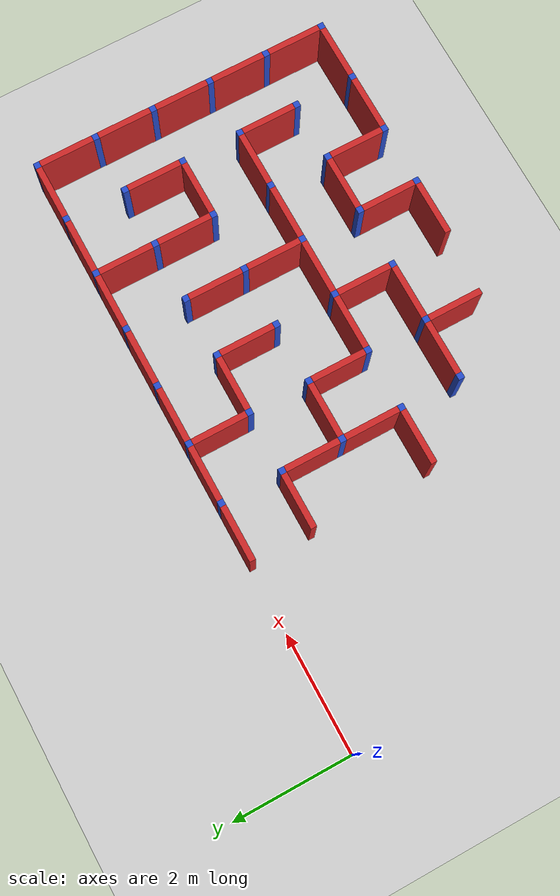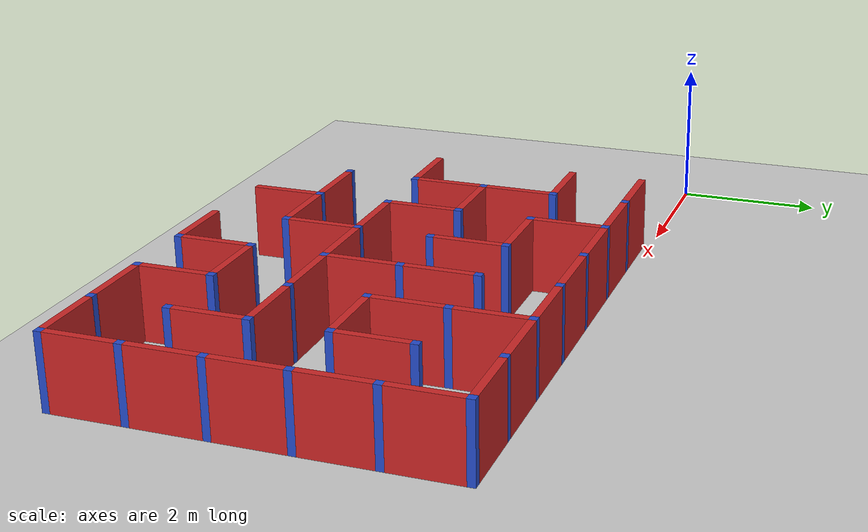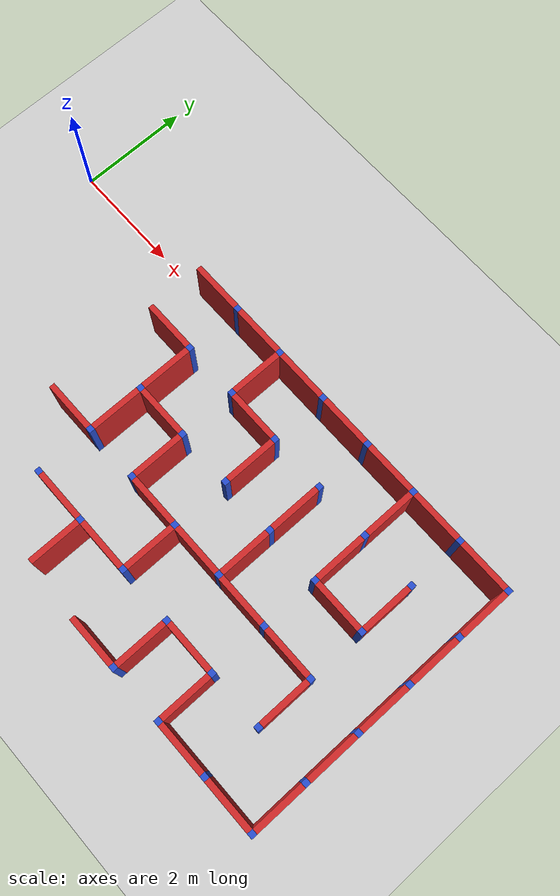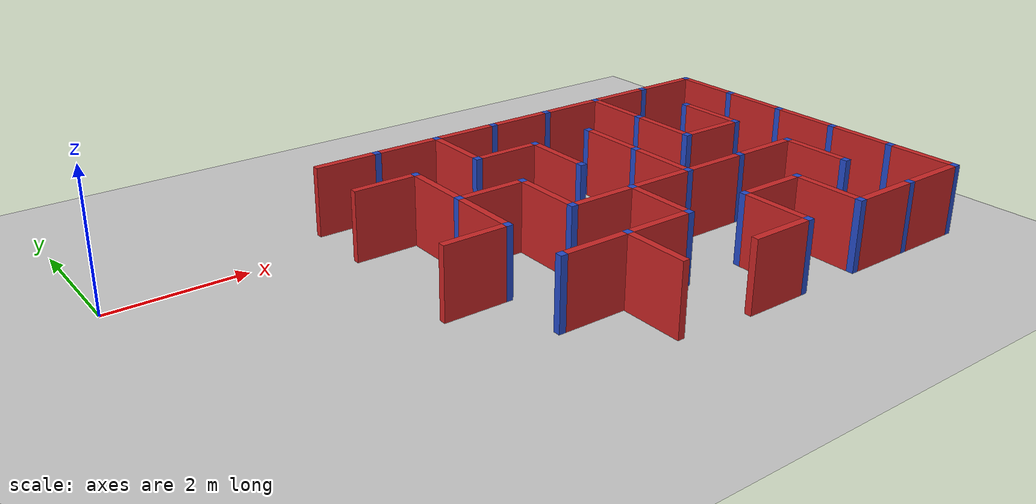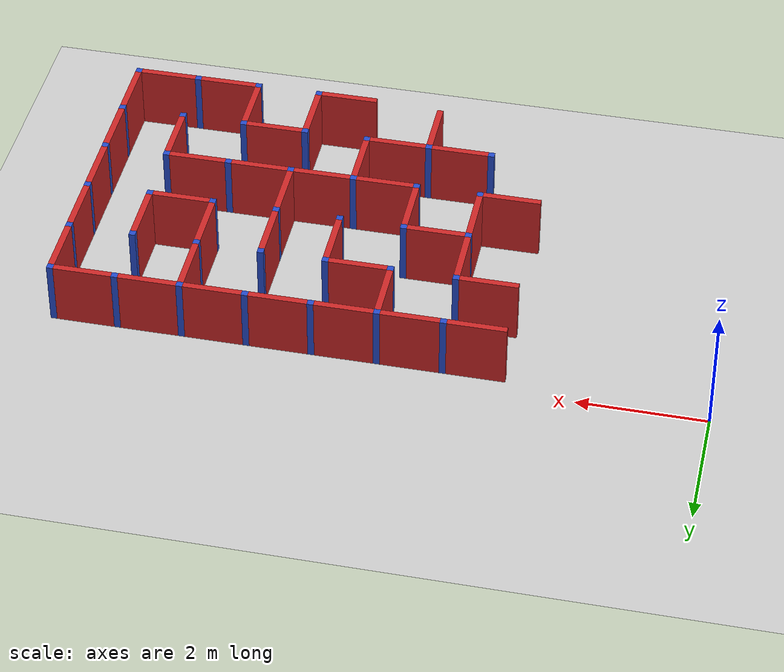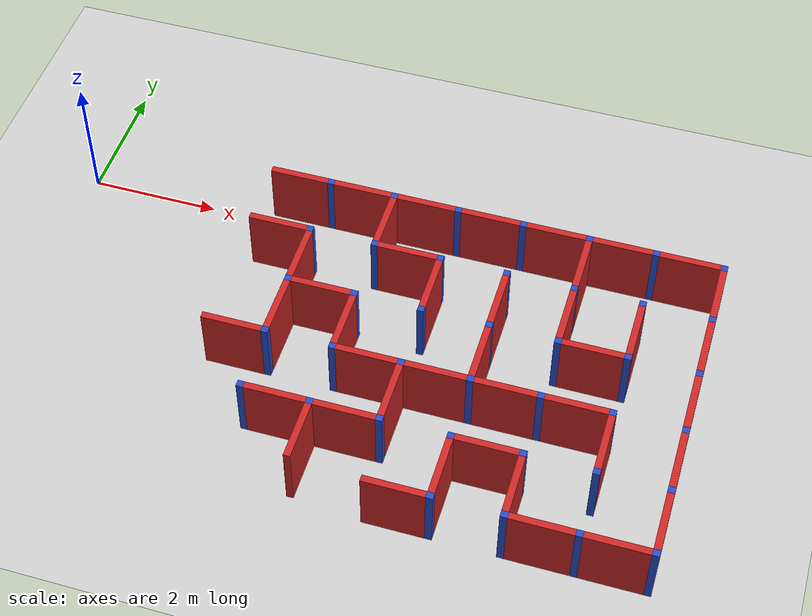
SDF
<sdf version="1.4">
 <world name="maze_world">
  <model name="ground">
   <static>true</static>
   <link name="ground_link">
    <collision name="collision1"><geometry><plane><normal>0 0 1</normal></plane></geometry></collision>
    <visual name="visual1"><geometry><plane><normal>0 0 1</normal><size>100 100</size></plane></geometry></visual>
   </link>
  </model>
  <model name="Untitled">
   <link name="Wall_3_0_h">
    <collision name="Wall_0_Collision">
     <geometry><box><size>0.9 0.1 1</size></box></geometry>
     <pose>0 0 0.75 0 -0 0</pose>
    </collision>
    <visual name="Wall_0_Visual">
     <pose>0 0 0.75 0 -0 0</pose>
     <geometry><box><size>0.9 0.1 1</size></box></geometry>
     <material>
      <script><uri>file://media/materials/scripts/gazebo.material</uri><name>Gazebo/Red</name></script>
      <ambient>0.921569 0.807843 0.615686 1</ambient>
     </material>
     <meta><layer>0</layer></meta>
    </visual>
    <pose>3.5 0 0 0 -0 0</pose>
   </link>
   <link name="Wall_4_0_h">
    <collision name="Wall_0_Collision">
     <geometry><box><size>0.9 0.1 1</size></box></geometry>
     <pose>0 0 0.75 0 -0 0</pose>
    </collision>
    <visual name="Wall_0_Visual">
     <pose>0 0 0.75 0 -0 0</pose>
     <geometry><box><size>0.9 0.1 1</size></box></geometry>
     <material>
      <script><uri>file://media/materials/scripts/gazebo.material</uri><name>Gazebo/Red</name></script>
      <ambient>0.921569 0.807843 0.615686 1</ambient>
     </material>
     <meta><layer>0</layer></meta>
    </visual>
    <pose>4.5 0 0 0 -0 0</pose>
   </link>
   <link name="Joint_4_0">
    <collision name="Wall_2_Collision">
     <geometry><box><size>0.1 0.1 1</size></box></geometry>
     <pose>0 0 0.75 0 -0 0</pose>
    </collision>
    <visual name="Wall_2_Visual">
     <pose>0 0 0.75 0 -0 0</pose>
     <geometry><box><size>0.1 0.1 1</size></box></geometry>
     <material>
      <script><uri>file://media/materials/scripts/gazebo.material</uri><name>Gazebo/Blue</name></script>
      <ambient>0.996078 0.47451 0.0196078 1</ambient>
     </material>
     <meta><layer>0</layer></meta>
    </visual>
    <pose>4 0 0 0 -0 0</pose>
   </link>
   <link name="Wall_5_0_h">
    <collision name="Wall_0_Collision">
     <geometry><box><size>0.9 0.1 1</size></box></geometry>
     <pose>0 0 0.75 0 -0 0</pose>
    </collision>
    <visual name="Wall_0_Visual">
     <pose>0 0 0.75 0 -0 0</pose>
     <geometry><box><size>0.9 0.1 1</size></box></geometry>
     <material>
      <script><uri>file://media/materials/scripts/gazebo.material</uri><name>Gazebo/Red</name></script>
      <ambient>0.921569 0.807843 0.615686 1</ambient>
     </material>
     <meta><layer>0</layer></meta>
    </visual>
    <pose>5.5 0 0 0 -0 0</pose>
   </link>
   <link name="Wall_5_0_v">
    <collision name="Wall_0_Collision">
     <geometry><box><size>0.9 0.1 1</size></box></geometry>
     <pose>0 0 0.75 0 -0 0</pose>
    </collision>
    <visual name="Wall_0_Visual">
     <pose>0 0 0.75 0 -0 0</pose>
     <geometry><box><size>0.9 0.1 1</size></box></geometry>
     <material>
      <script><uri>file://media/materials/scripts/gazebo.material</uri><name>Gazebo/Red</name></script>
      <ambient>0.921569 0.807843 0.615686 1</ambient>
     </material>
     <meta><layer>0</layer></meta>
    </visual>
    <pose>5 -0.5 0 0 -0 1.5708</pose>
   </link>
   <link name="Joint_5_0">
    <collision name="Wall_2_Collision">
     <geometry><box><size>0.1 0.1 1</size></box></geometry>
     <pose>0 0 0.75 0 -0 0</pose>
    </collision>
    <visual name="Wall_2_Visual">
     <pose>0 0 0.75 0 -0 0</pose>
     <geometry><box><size>0.1 0.1 1</size></box></geometry>
     <material>
      <script><uri>file://media/materials/scripts/gazebo.material</uri><name>Gazebo/Blue</name></script>
      <ambient>0.996078 0.47451 0.0196078 1</ambient>
     </material>
     <meta><layer>0</layer></meta>
    </visual>
    <pose>5 0 0 0 -0 0</pose>
   </link>
   <link name="Wall_6_0_h">
    <collision name="Wall_0_Collision">
     <geometry><box><size>0.9 0.1 1</size></box></geometry>
     <pose>0 0 0.75 0 -0 0</pose>
    </collision>
    <visual name="Wall_0_Visual">
     <pose>0 0 0.75 0 -0 0</pose>
     <geometry><box><size>0.9 0.1 1</size></box></geometry>
     <material>
      <script><uri>file://media/materials/scripts/gazebo.material</uri><name>Gazebo/Red</name></script>
      <ambient>0.921569 0.807843 0.615686 1</ambient>
     </material>
     <meta><layer>0</layer></meta>
    </visual>
    <pose>6.5 0 0 0 -0 0</pose>
   </link>
   <link name="Joint_6_0">
    <collision name="Wall_2_Collision">
     <geometry><box><size>0.1 0.1 1</size></box></geometry>
     <pose>0 0 0.75 0 -0 0</pose>
    </collision>
    <visual name="Wall_2_Visual">
     <pose>0 0 0.75 0 -0 0</pose>
     <geometry><box><size>0.1 0.1 1</size></box></geometry>
     <material>
      <script><uri>file://media/materials/scripts/gazebo.material</uri><name>Gazebo/Blue</name></script>
      <ambient>0.996078 0.47451 0.0196078 1</ambient>
     </material>
     <meta><layer>0</layer></meta>
    </visual>
    <pose>6 0 0 0 -0 0</pose>
   </link>
   <link name="Wall_7_0_h">
    <collision name="Wall_0_Collision">
     <geometry><box><size>0.9 0.1 1</size></box></geometry>
     <pose>0 0 0.75 0 -0 0</pose>
    </collision>
    <visual name="Wall_0_Visual">
     <pose>0 0 0.75 0 -0 0</pose>
     <geometry><box><size>0.9 0.1 1</size></box></geometry>
     <material>
      <script><uri>file://media/materials/scripts/gazebo.material</uri><name>Gazebo/Red</name></script>
      <ambient>0.921569 0.807843 0.615686 1</ambient>
     </material>
     <meta><layer>0</layer></meta>
    </visual>
    <pose>7.5 0 0 0 -0 0</pose>
   </link>
   <link name="Joint_7_0">
    <collision name="Wall_2_Collision">
     <geometry><box><size>0.1 0.1 1</size></box></geometry>
     <pose>0 0 0.75 0 -0 0</pose>
    </collision>
    <visual name="Wall_2_Visual">
     <pose>0 0 0.75 0 -0 0</pose>
     <geometry><box><size>0.1 0.1 1</size></box></geometry>
     <material>
      <script><uri>file://media/materials/scripts/gazebo.material</uri><name>Gazebo/Blue</name></script>
      <ambient>0.996078 0.47451 0.0196078 1</ambient>
     </material>
     <meta><layer>0</layer></meta>
    </visual>
    <pose>7 0 0 0 -0 0</pose>
   </link>
   <link name="Wall_8_0_h">
    <collision name="Wall_0_Collision">
     <geometry><box><size>0.9 0.1 1</size></box></geometry>
     <pose>0 0 0.75 0 -0 0</pose>
    </collision>
    <visual name="Wall_0_Visual">
     <pose>0 0 0.75 0 -0 0</pose>
     <geometry><box><size>0.9 0.1 1</size></box></geometry>
     <material>
      <script><uri>file://media/materials/scripts/gazebo.material</uri><name>Gazebo/Red</name></script>
      <ambient>0.921569 0.807843 0.615686 1</ambient>
     </material>
     <meta><layer>0</layer></meta>
    </visual>
    <pose>8.5 0 0 0 -0 0</pose>
   </link>
   <link name="Wall_8_0_v">
    <collision name="Wall_0_Collision">
     <geometry><box><size>0.9 0.1 1</size></box></geometry>
     <pose>0 0 0.75 0 -0 0</pose>
    </collision>
    <visual name="Wall_0_Visual">
     <pose>0 0 0.75 0 -0 0</pose>
     <geometry><box><size>0.9 0.1 1</size></box></geometry>
     <material>
      <script><uri>file://media/materials/scripts/gazebo.material</uri><name>Gazebo/Red</name></script>
      <ambient>0.921569 0.807843 0.615686 1</ambient>
     </material>
     <meta><layer>0</layer></meta>
    </visual>
    <pose>8 -0.5 0 0 -0 1.5708</pose>
   </link>
   <link name="Joint_8_0">
    <collision name="Wall_2_Collision">
     <geometry><box><size>0.1 0.1 1</size></box></geometry>
     <pose>0 0 0.75 0 -0 0</pose>
    </collision>
    <visual name="Wall_2_Visual">
     <pose>0 0 0.75 0 -0 0</pose>
     <geometry><box><size>0.1 0.1 1</size></box></geometry>
     <material>
      <script><uri>file://media/materials/scripts/gazebo.material</uri><name>Gazebo/Blue</name></script>
      <ambient>0.996078 0.47451 0.0196078 1</ambient>
     </material>
     <meta><layer>0</layer></meta>
    </visual>
    <pose>8 0 0 0 -0 0</pose>
   </link>
   <link name="Wall_9_0_h">
    <collision name="Wall_0_Collision">
     <geometry><box><size>0.9 0.1 1</size></box></geometry>
     <pose>0 0 0.75 0 -0 0</pose>
    </collision>
    <visual name="Wall_0_Visual">
     <pose>0 0 0.75 0 -0 0</pose>
     <geometry><box><size>0.9 0.1 1</size></box></geometry>
     <material>
      <script><uri>file://media/materials/scripts/gazebo.material</uri><name>Gazebo/Red</name></script>
      <ambient>0.921569 0.807843 0.615686 1</ambient>
     </material>
     <meta><layer>0</layer></meta>
    </visual>
    <pose>9.5 0 0 0 -0 0</pose>
   </link>
   <link name="Joint_9_0">
    <collision name="Wall_2_Collision">
     <geometry><box><size>0.1 0.1 1</size></box></geometry>
     <pose>0 0 0.75 0 -0 0</pose>
    </collision>
    <visual name="Wall_2_Visual">
     <pose>0 0 0.75 0 -0 0</pose>
     <geometry><box><size>0.1 0.1 1</size></box></geometry>
     <material>
      <script><uri>file://media/materials/scripts/gazebo.material</uri><name>Gazebo/Blue</name></script>
      <ambient>0.996078 0.47451 0.0196078 1</ambient>
     </material>
     <meta><layer>0</layer></meta>
    </visual>
    <pose>9 0 0 0 -0 0</pose>
   </link>
   <link name="Wall_10_0_v">
    <collision name="Wall_0_Collision">
     <geometry><box><size>0.9 0.1 1</size></box></geometry>
     <pose>0 0 0.75 0 -0 0</pose>
    </collision>
    <visual name="Wall_0_Visual">
     <pose>0 0 0.75 0 -0 0</pose>
     <geometry><box><size>0.9 0.1 1</size></box></geometry>
     <material>
      <script><uri>file://media/materials/scripts/gazebo.material</uri><name>Gazebo/Red</name></script>
      <ambient>0.921569 0.807843 0.615686 1</ambient>
     </material>
     <meta><layer>0</layer></meta>
    </visual>
    <pose>10 -0.5 0 0 -0 1.5708</pose>
   </link>
   <link name="Joint_10_0">
    <collision name="Wall_2_Collision">
     <geometry><box><size>0.1 0.1 1</size></box></geometry>
     <pose>0 0 0.75 0 -0 0</pose>
    </collision>
    <visual name="Wall_2_Visual">
     <pose>0 0 0.75 0 -0 0</pose>
     <geometry><box><size>0.1 0.1 1</size></box></geometry>
     <material>
      <script><uri>file://media/materials/scripts/gazebo.material</uri><name>Gazebo/Blue</name></script>
      <ambient>0.996078 0.47451 0.0196078 1</ambient>
     </material>
     <meta><layer>0</layer></meta>
    </visual>
    <pose>10 0 0 0 -0 0</pose>
   </link>
   <link name="Wall_3_1_h">
    <collision name="Wall_0_Collision">
     <geometry><box><size>0.9 0.1 1</size></box></geometry>
     <pose>0 0 0.75 0 -0 0</pose>
    </collision>
    <visual name="Wall_0_Visual">
     <pose>0 0 0.75 0 -0 0</pose>
     <geometry><box><size>0.9 0.1 1</size></box></geometry>
     <material>
      <script><uri>file://media/materials/scripts/gazebo.material</uri><name>Gazebo/Red</name></script>
      <ambient>0.921569 0.807843 0.615686 1</ambient>
     </material>
     <meta><layer>0</layer></meta>
    </visual>
    <pose>3.5 -1 0 0 -0 0</pose>
   </link>
   <link name="Wall_4_1_v">
    <collision name="Wall_0_Collision">
     <geometry><box><size>0.9 0.1 1</size></box></geometry>
     <pose>0 0 0.75 0 -0 0</pose>
    </collision>
    <visual name="Wall_0_Visual">
     <pose>0 0 0.75 0 -0 0</pose>
     <geometry><box><size>0.9 0.1 1</size></box></geometry>
     <material>
      <script><uri>file://media/materials/scripts/gazebo.material</uri><name>Gazebo/Red</name></script>
      <ambient>0.921569 0.807843 0.615686 1</ambient>
     </material>
     <meta><layer>0</layer></meta>
    </visual>
    <pose>4 -1.5 0 0 -0 1.5708</pose>
   </link>
   <link name="Joint_4_-1">
    <collision name="Wall_2_Collision">
     <geometry><box><size>0.1 0.1 1</size></box></geometry>
     <pose>0 0 0.75 0 -0 0</pose>
    </collision>
    <visual name="Wall_2_Visual">
     <pose>0 0 0.75 0 -0 0</pose>
     <geometry><box><size>0.1 0.1 1</size></box></geometry>
     <material>
      <script><uri>file://media/materials/scripts/gazebo.material</uri><name>Gazebo/Blue</name></script>
      <ambient>0.996078 0.47451 0.0196078 1</ambient>
     </material>
     <meta><layer>0</layer></meta>
    </visual>
    <pose>4 -1 0 0 -0 0</pose>
   </link>
   <link name="Wall_5_1_h">
    <collision name="Wall_0_Collision">
     <geometry><box><size>0.9 0.1 1</size></box></geometry>
     <pose>0 0 0.75 0 -0 0</pose>
    </collision>
    <visual name="Wall_0_Visual">
     <pose>0 0 0.75 0 -0 0</pose>
     <geometry><box><size>0.9 0.1 1</size></box></geometry>
     <material>
      <script><uri>file://media/materials/scripts/gazebo.material</uri><name>Gazebo/Red</name></script>
      <ambient>0.921569 0.807843 0.615686 1</ambient>
     </material>
     <meta><layer>0</layer></meta>
    </visual>
    <pose>5.5 -1 0 0 -0 0</pose>
   </link>
   <link name="Joint_5_-1">
    <collision name="Wall_2_Collision">
     <geometry><box><size>0.1 0.1 1</size></box></geometry>
     <pose>0 0 0.75 0 -0 0</pose>
    </collision>
    <visual name="Wall_2_Visual">
     <pose>0 0 0.75 0 -0 0</pose>
     <geometry><box><size>0.1 0.1 1</size></box></geometry>
     <material>
      <script><uri>file://media/materials/scripts/gazebo.material</uri><name>Gazebo/Blue</name></script>
      <ambient>0.996078 0.47451 0.0196078 1</ambient>
     </material>
     <meta><layer>0</layer></meta>
    </visual>
    <pose>5 -1 0 0 -0 0</pose>
   </link>
   <link name="Wall_6_1_v">
    <collision name="Wall_0_Collision">
     <geometry><box><size>0.9 0.1 1</size></box></geometry>
     <pose>0 0 0.75 0 -0 0</pose>
    </collision>
    <visual name="Wall_0_Visual">
     <pose>0 0 0.75 0 -0 0</pose>
     <geometry><box><size>0.9 0.1 1</size></box></geometry>
     <material>
      <script><uri>file://media/materials/scripts/gazebo.material</uri><name>Gazebo/Red</name></script>
      <ambient>0.921569 0.807843 0.615686 1</ambient>
     </material>
     <meta><layer>0</layer></meta>
    </visual>
    <pose>6 -1.5 0 0 -0 1.5708</pose>
   </link>
   <link name="Joint_6_-1">
    <collision name="Wall_2_Collision">
     <geometry><box><size>0.1 0.1 1</size></box></geometry>
     <pose>0 0 0.75 0 -0 0</pose>
    </collision>
    <visual name="Wall_2_Visual">
     <pose>0 0 0.75 0 -0 0</pose>
     <geometry><box><size>0.1 0.1 1</size></box></geometry>
     <material>
      <script><uri>file://media/materials/scripts/gazebo.material</uri><name>Gazebo/Blue</name></script>
      <ambient>0.996078 0.47451 0.0196078 1</ambient>
     </material>
     <meta><layer>0</layer></meta>
    </visual>
    <pose>6 -1 0 0 -0 0</pose>
   </link>
   <link name="Wall_7_1_v">
    <collision name="Wall_0_Collision">
     <geometry><box><size>0.9 0.1 1</size></box></geometry>
     <pose>0 0 0.75 0 -0 0</pose>
    </collision>
    <visual name="Wall_0_Visual">
     <pose>0 0 0.75 0 -0 0</pose>
     <geometry><box><size>0.9 0.1 1</size></box></geometry>
     <material>
      <script><uri>file://media/materials/scripts/gazebo.material</uri><name>Gazebo/Red</name></script>
      <ambient>0.921569 0.807843 0.615686 1</ambient>
     </material>
     <meta><layer>0</layer></meta>
    </visual>
    <pose>7 -1.5 0 0 -0 1.5708</pose>
   </link>
   <link name="Joint_7_-1">
    <collision name="Wall_2_Collision">
     <geometry><box><size>0.1 0.1 1</size></box></geometry>
     <pose>0 0 0.75 0 -0 0</pose>
    </collision>
    <visual name="Wall_2_Visual">
     <pose>0 0 0.75 0 -0 0</pose>
     <geometry><box><size>0.1 0.1 1</size></box></geometry>
     <material>
      <script><uri>file://media/materials/scripts/gazebo.material</uri><name>Gazebo/Blue</name></script>
      <ambient>0.996078 0.47451 0.0196078 1</ambient>
     </material>
     <meta><layer>0</layer></meta>
    </visual>
    <pose>7 -1 0 0 -0 0</pose>
   </link>
   <link name="Wall_8_1_v">
    <collision name="Wall_0_Collision">
     <geometry><box><size>0.9 0.1 1</size></box></geometry>
     <pose>0 0 0.75 0 -0 0</pose>
    </collision>
    <visual name="Wall_0_Visual">
     <pose>0 0 0.75 0 -0 0</pose>
     <geometry><box><size>0.9 0.1 1</size></box></geometry>
     <material>
      <script><uri>file://media/materials/scripts/gazebo.material</uri><name>Gazebo/Red</name></script>
      <ambient>0.921569 0.807843 0.615686 1</ambient>
     </material>
     <meta><layer>0</layer></meta>
    </visual>
    <pose>8 -1.5 0 0 -0 1.5708</pose>
   </link>
   <link name="Joint_8_-1">
    <collision name="Wall_2_Collision">
     <geometry><box><size>0.1 0.1 1</size></box></geometry>
     <pose>0 0 0.75 0 -0 0</pose>
    </collision>
    <visual name="Wall_2_Visual">
     <pose>0 0 0.75 0 -0 0</pose>
     <geometry><box><size>0.1 0.1 1</size></box></geometry>
     <material>
      <script><uri>file://media/materials/scripts/gazebo.material</uri><name>Gazebo/Blue</name></script>
      <ambient>0.996078 0.47451 0.0196078 1</ambient>
     </material>
     <meta><layer>0</layer></meta>
    </visual>
    <pose>8 -1 0 0 -0 0</pose>
   </link>
   <link name="Wall_9_1_v">
    <collision name="Wall_0_Collision">
     <geometry><box><size>0.9 0.1 1</size></box></geometry>
     <pose>0 0 0.75 0 -0 0</pose>
    </collision>
    <visual name="Wall_0_Visual">
     <pose>0 0 0.75 0 -0 0</pose>
     <geometry><box><size>0.9 0.1 1</size></box></geometry>
     <material>
      <script><uri>file://media/materials/scripts/gazebo.material</uri><name>Gazebo/Red</name></script>
      <ambient>0.921569 0.807843 0.615686 1</ambient>
     </material>
     <meta><layer>0</layer></meta>
    </visual>
    <pose>9 -1.5 0 0 -0 1.5708</pose>
   </link>
   <link name="Joint_9_-1">
    <collision name="Wall_2_Collision">
     <geometry><box><size>0.1 0.1 1</size></box></geometry>
     <pose>0 0 0.75 0 -0 0</pose>
    </collision>
    <visual name="Wall_2_Visual">
     <pose>0 0 0.75 0 -0 0</pose>
     <geometry><box><size>0.1 0.1 1</size></box></geometry>
     <material>
      <script><uri>file://media/materials/scripts/gazebo.material</uri><name>Gazebo/Blue</name></script>
      <ambient>0.996078 0.47451 0.0196078 1</ambient>
     </material>
     <meta><layer>0</layer></meta>
    </visual>
    <pose>9 -1 0 0 -0 0</pose>
   </link>
   <link name="Wall_10_1_v">
    <collision name="Wall_0_Collision">
     <geometry><box><size>0.9 0.1 1</size></box></geometry>
     <pose>0 0 0.75 0 -0 0</pose>
    </collision>
    <visual name="Wall_0_Visual">
     <pose>0 0 0.75 0 -0 0</pose>
     <geometry><box><size>0.9 0.1 1</size></box></geometry>
     <material>
      <script><uri>file://media/materials/scripts/gazebo.material</uri><name>Gazebo/Red</name></script>
      <ambient>0.921569 0.807843 0.615686 1</ambient>
     </material>
     <meta><layer>0</layer></meta>
    </visual>
    <pose>10 -1.5 0 0 -0 1.5708</pose>
   </link>
   <link name="Joint_10_-1">
    <collision name="Wall_2_Collision">
     <geometry><box><size>0.1 0.1 1</size></box></geometry>
     <pose>0 0 0.75 0 -0 0</pose>
    </collision>
    <visual name="Wall_2_Visual">
     <pose>0 0 0.75 0 -0 0</pose>
     <geometry><box><size>0.1 0.1 1</size></box></geometry>
     <material>
      <script><uri>file://media/materials/scripts/gazebo.material</uri><name>Gazebo/Blue</name></script>
      <ambient>0.996078 0.47451 0.0196078 1</ambient>
     </material>
     <meta><layer>0</layer></meta>
    </visual>
    <pose>10 -1 0 0 -0 0</pose>
   </link>
   <link name="Wall_4_2_h">
    <collision name="Wall_0_Collision">
     <geometry><box><size>0.9 0.1 1</size></box></geometry>
     <pose>0 0 0.75 0 -0 0</pose>
    </collision>
    <visual name="Wall_0_Visual">
     <pose>0 0 0.75 0 -0 0</pose>
     <geometry><box><size>0.9 0.1 1</size></box></geometry>
     <material>
      <script><uri>file://media/materials/scripts/gazebo.material</uri><name>Gazebo/Red</name></script>
      <ambient>0.921569 0.807843 0.615686 1</ambient>
     </material>
     <meta><layer>0</layer></meta>
    </visual>
    <pose>4.5 -2 0 0 -0 0</pose>
   </link>
   <link name="Wall_4_2_v">
    <collision name="Wall_0_Collision">
     <geometry><box><size>0.9 0.1 1</size></box></geometry>
     <pose>0 0 0.75 0 -0 0</pose>
    </collision>
    <visual name="Wall_0_Visual">
     <pose>0 0 0.75 0 -0 0</pose>
     <geometry><box><size>0.9 0.1 1</size></box></geometry>
     <material>
      <script><uri>file://media/materials/scripts/gazebo.material</uri><name>Gazebo/Red</name></script>
      <ambient>0.921569 0.807843 0.615686 1</ambient>
     </material>
     <meta><layer>0</layer></meta>
    </visual>
    <pose>4 -2.5 0 0 -0 1.5708</pose>
   </link>
   <link name="Joint_4_-2">
    <collision name="Wall_2_Collision">
     <geometry><box><size>0.1 0.1 1</size></box></geometry>
     <pose>0 0 0.75 0 -0 0</pose>
    </collision>
    <visual name="Wall_2_Visual">
     <pose>0 0 0.75 0 -0 0</pose>
     <geometry><box><size>0.1 0.1 1</size></box></geometry>
     <material>
      <script><uri>file://media/materials/scripts/gazebo.material</uri><name>Gazebo/Blue</name></script>
      <ambient>0.996078 0.47451 0.0196078 1</ambient>
     </material>
     <meta><layer>0</layer></meta>
    </visual>
    <pose>4 -2 0 0 -0 0</pose>
   </link>
   <link name="Wall_5_2_v">
    <collision name="Wall_0_Collision">
     <geometry><box><size>0.9 0.1 1</size></box></geometry>
     <pose>0 0 0.75 0 -0 0</pose>
    </collision>
    <visual name="Wall_0_Visual">
     <pose>0 0 0.75 0 -0 0</pose>
     <geometry><box><size>0.9 0.1 1</size></box></geometry>
     <material>
      <script><uri>file://media/materials/scripts/gazebo.material</uri><name>Gazebo/Red</name></script>
      <ambient>0.921569 0.807843 0.615686 1</ambient>
     </material>
     <meta><layer>0</layer></meta>
    </visual>
    <pose>5 -2.5 0 0 -0 1.5708</pose>
   </link>
   <link name="Joint_5_-2">
    <collision name="Wall_2_Collision">
     <geometry><box><size>0.1 0.1 1</size></box></geometry>
     <pose>0 0 0.75 0 -0 0</pose>
    </collision>
    <visual name="Wall_2_Visual">
     <pose>0 0 0.75 0 -0 0</pose>
     <geometry><box><size>0.1 0.1 1</size></box></geometry>
     <material>
      <script><uri>file://media/materials/scripts/gazebo.material</uri><name>Gazebo/Blue</name></script>
      <ambient>0.996078 0.47451 0.0196078 1</ambient>
     </material>
     <meta><layer>0</layer></meta>
    </visual>
    <pose>5 -2 0 0 -0 0</pose>
   </link>
   <link name="Joint_6_-2">
    <collision name="Wall_2_Collision">
     <geometry><box><size>0.1 0.1 1</size></box></geometry>
     <pose>0 0 0.75 0 -0 0</pose>
    </collision>
    <visual name="Wall_2_Visual">
     <pose>0 0 0.75 0 -0 0</pose>
     <geometry><box><size>0.1 0.1 1</size></box></geometry>
     <material>
      <script><uri>file://media/materials/scripts/gazebo.material</uri><name>Gazebo/Blue</name></script>
      <ambient>0.996078 0.47451 0.0196078 1</ambient>
     </material>
     <meta><layer>0</layer></meta>
    </visual>
    <pose>6 -2 0 0 -0 0</pose>
   </link>
   <link name="Wall_7_2_v">
    <collision name="Wall_0_Collision">
     <geometry><box><size>0.9 0.1 1</size></box></geometry>
     <pose>0 0 0.75 0 -0 0</pose>
    </collision>
    <visual name="Wall_0_Visual">
     <pose>0 0 0.75 0 -0 0</pose>
     <geometry><box><size>0.9 0.1 1</size></box></geometry>
     <material>
      <script><uri>file://media/materials/scripts/gazebo.material</uri><name>Gazebo/Red</name></script>
      <ambient>0.921569 0.807843 0.615686 1</ambient>
     </material>
     <meta><layer>0</layer></meta>
    </visual>
    <pose>7 -2.5 0 0 -0 1.5708</pose>
   </link>
   <link name="Joint_7_-2">
    <collision name="Wall_2_Collision">
     <geometry><box><size>0.1 0.1 1</size></box></geometry>
     <pose>0 0 0.75 0 -0 0</pose>
    </collision>
    <visual name="Wall_2_Visual">
     <pose>0 0 0.75 0 -0 0</pose>
     <geometry><box><size>0.1 0.1 1</size></box></geometry>
     <material>
      <script><uri>file://media/materials/scripts/gazebo.material</uri><name>Gazebo/Blue</name></script>
      <ambient>0.996078 0.47451 0.0196078 1</ambient>
     </material>
     <meta><layer>0</layer></meta>
    </visual>
    <pose>7 -2 0 0 -0 0</pose>
   </link>
   <link name="Wall_8_2_h">
    <collision name="Wall_0_Collision">
     <geometry><box><size>0.9 0.1 1</size></box></geometry>
     <pose>0 0 0.75 0 -0 0</pose>
    </collision>
    <visual name="Wall_0_Visual">
     <pose>0 0 0.75 0 -0 0</pose>
     <geometry><box><size>0.9 0.1 1</size></box></geometry>
     <material>
      <script><uri>file://media/materials/scripts/gazebo.material</uri><name>Gazebo/Red</name></script>
      <ambient>0.921569 0.807843 0.615686 1</ambient>
     </material>
     <meta><layer>0</layer></meta>
    </visual>
    <pose>8.5 -2 0 0 -0 0</pose>
   </link>
   <link name="Joint_8_-2">
    <collision name="Wall_2_Collision">
     <geometry><box><size>0.1 0.1 1</size></box></geometry>
     <pose>0 0 0.75 0 -0 0</pose>
    </collision>
    <visual name="Wall_2_Visual">
     <pose>0 0 0.75 0 -0 0</pose>
     <geometry><box><size>0.1 0.1 1</size></box></geometry>
     <material>
      <script><uri>file://media/materials/scripts/gazebo.material</uri><name>Gazebo/Blue</name></script>
      <ambient>0.996078 0.47451 0.0196078 1</ambient>
     </material>
     <meta><layer>0</layer></meta>
    </visual>
    <pose>8 -2 0 0 -0 0</pose>
   </link>
   <link name="Joint_9_-2">
    <collision name="Wall_2_Collision">
     <geometry><box><size>0.1 0.1 1</size></box></geometry>
     <pose>0 0 0.75 0 -0 0</pose>
    </collision>
    <visual name="Wall_2_Visual">
     <pose>0 0 0.75 0 -0 0</pose>
     <geometry><box><size>0.1 0.1 1</size></box></geometry>
     <material>
      <script><uri>file://media/materials/scripts/gazebo.material</uri><name>Gazebo/Blue</name></script>
      <ambient>0.996078 0.47451 0.0196078 1</ambient>
     </material>
     <meta><layer>0</layer></meta>
    </visual>
    <pose>9 -2 0 0 -0 0</pose>
   </link>
   <link name="Wall_10_2_v">
    <collision name="Wall_0_Collision">
     <geometry><box><size>0.9 0.1 1</size></box></geometry>
     <pose>0 0 0.75 0 -0 0</pose>
    </collision>
    <visual name="Wall_0_Visual">
     <pose>0 0 0.75 0 -0 0</pose>
     <geometry><box><size>0.9 0.1 1</size></box></geometry>
     <material>
      <script><uri>file://media/materials/scripts/gazebo.material</uri><name>Gazebo/Red</name></script>
      <ambient>0.921569 0.807843 0.615686 1</ambient>
     </material>
     <meta><layer>0</layer></meta>
    </visual>
    <pose>10 -2.5 0 0 -0 1.5708</pose>
   </link>
   <link name="Joint_10_-2">
    <collision name="Wall_2_Collision">
     <geometry><box><size>0.1 0.1 1</size></box></geometry>
     <pose>0 0 0.75 0 -0 0</pose>
    </collision>
    <visual name="Wall_2_Visual">
     <pose>0 0 0.75 0 -0 0</pose>
     <geometry><box><size>0.1 0.1 1</size></box></geometry>
     <material>
      <script><uri>file://media/materials/scripts/gazebo.material</uri><name>Gazebo/Blue</name></script>
      <ambient>0.996078 0.47451 0.0196078 1</ambient>
     </material>
     <meta><layer>0</layer></meta>
    </visual>
    <pose>10 -2 0 0 -0 0</pose>
   </link>
   <link name="Wall_3_3_h">
    <collision name="Wall_0_Collision">
     <geometry><box><size>0.9 0.1 1</size></box></geometry>
     <pose>0 0 0.75 0 -0 0</pose>
    </collision>
    <visual name="Wall_0_Visual">
     <pose>0 0 0.75 0 -0 0</pose>
     <geometry><box><size>0.9 0.1 1</size></box></geometry>
     <material>
      <script><uri>file://media/materials/scripts/gazebo.material</uri><name>Gazebo/Red</name></script>
      <ambient>0.921569 0.807843 0.615686 1</ambient>
     </material>
     <meta><layer>0</layer></meta>
    </visual>
    <pose>3.5 -3 0 0 -0 0</pose>
   </link>
   <link name="Joint_4_-3">
    <collision name="Wall_2_Collision">
     <geometry><box><size>0.1 0.1 1</size></box></geometry>
     <pose>0 0 0.75 0 -0 0</pose>
    </collision>
    <visual name="Wall_2_Visual">
     <pose>0 0 0.75 0 -0 0</pose>
     <geometry><box><size>0.1 0.1 1</size></box></geometry>
     <material>
      <script><uri>file://media/materials/scripts/gazebo.material</uri><name>Gazebo/Blue</name></script>
      <ambient>0.996078 0.47451 0.0196078 1</ambient>
     </material>
     <meta><layer>0</layer></meta>
    </visual>
    <pose>4 -3 0 0 -0 0</pose>
   </link>
   <link name="Wall_5_3_h">
    <collision name="Wall_0_Collision">
     <geometry><box><size>0.9 0.1 1</size></box></geometry>
     <pose>0 0 0.75 0 -0 0</pose>
    </collision>
    <visual name="Wall_0_Visual">
     <pose>0 0 0.75 0 -0 0</pose>
     <geometry><box><size>0.9 0.1 1</size></box></geometry>
     <material>
      <script><uri>file://media/materials/scripts/gazebo.material</uri><name>Gazebo/Red</name></script>
      <ambient>0.921569 0.807843 0.615686 1</ambient>
     </material>
     <meta><layer>0</layer></meta>
    </visual>
    <pose>5.5 -3 0 0 -0 0</pose>
   </link>
   <link name="Joint_5_-3">
    <collision name="Wall_2_Collision">
     <geometry><box><size>0.1 0.1 1</size></box></geometry>
     <pose>0 0 0.75 0 -0 0</pose>
    </collision>
    <visual name="Wall_2_Visual">
     <pose>0 0 0.75 0 -0 0</pose>
     <geometry><box><size>0.1 0.1 1</size></box></geometry>
     <material>
      <script><uri>file://media/materials/scripts/gazebo.material</uri><name>Gazebo/Blue</name></script>
      <ambient>0.996078 0.47451 0.0196078 1</ambient>
     </material>
     <meta><layer>0</layer></meta>
    </visual>
    <pose>5 -3 0 0 -0 0</pose>
   </link>
   <link name="Wall_6_3_h">
    <collision name="Wall_0_Collision">
     <geometry><box><size>0.9 0.1 1</size></box></geometry>
     <pose>0 0 0.75 0 -0 0</pose>
    </collision>
    <visual name="Wall_0_Visual">
     <pose>0 0 0.75 0 -0 0</pose>
     <geometry><box><size>0.9 0.1 1</size></box></geometry>
     <material>
      <script><uri>file://media/materials/scripts/gazebo.material</uri><name>Gazebo/Red</name></script>
      <ambient>0.921569 0.807843 0.615686 1</ambient>
     </material>
     <meta><layer>0</layer></meta>
    </visual>
    <pose>6.5 -3 0 0 -0 0</pose>
   </link>
   <link name="Wall_6_3_v">
    <collision name="Wall_0_Collision">
     <geometry><box><size>0.9 0.1 1</size></box></geometry>
     <pose>0 0 0.75 0 -0 0</pose>
    </collision>
    <visual name="Wall_0_Visual">
     <pose>0 0 0.75 0 -0 0</pose>
     <geometry><box><size>0.9 0.1 1</size></box></geometry>
     <material>
      <script><uri>file://media/materials/scripts/gazebo.material</uri><name>Gazebo/Red</name></script>
      <ambient>0.921569 0.807843 0.615686 1</ambient>
     </material>
     <meta><layer>0</layer></meta>
    </visual>
    <pose>6 -3.5 0 0 -0 1.5708</pose>
   </link>
   <link name="Joint_6_-3">
    <collision name="Wall_2_Collision">
     <geometry><box><size>0.1 0.1 1</size></box></geometry>
     <pose>0 0 0.75 0 -0 0</pose>
    </collision>
    <visual name="Wall_2_Visual">
     <pose>0 0 0.75 0 -0 0</pose>
     <geometry><box><size>0.1 0.1 1</size></box></geometry>
     <material>
      <script><uri>file://media/materials/scripts/gazebo.material</uri><name>Gazebo/Blue</name></script>
      <ambient>0.996078 0.47451 0.0196078 1</ambient>
     </material>
     <meta><layer>0</layer></meta>
    </visual>
    <pose>6 -3 0 0 -0 0</pose>
   </link>
   <link name="Wall_7_3_h">
    <collision name="Wall_0_Collision">
     <geometry><box><size>0.9 0.1 1</size></box></geometry>
     <pose>0 0 0.75 0 -0 0</pose>
    </collision>
    <visual name="Wall_0_Visual">
     <pose>0 0 0.75 0 -0 0</pose>
     <geometry><box><size>0.9 0.1 1</size></box></geometry>
     <material>
      <script><uri>file://media/materials/scripts/gazebo.material</uri><name>Gazebo/Red</name></script>
      <ambient>0.921569 0.807843 0.615686 1</ambient>
     </material>
     <meta><layer>0</layer></meta>
    </visual>
    <pose>7.5 -3 0 0 -0 0</pose>
   </link>
   <link name="Joint_7_-3">
    <collision name="Wall_2_Collision">
     <geometry><box><size>0.1 0.1 1</size></box></geometry>
     <pose>0 0 0.75 0 -0 0</pose>
    </collision>
    <visual name="Wall_2_Visual">
     <pose>0 0 0.75 0 -0 0</pose>
     <geometry><box><size>0.1 0.1 1</size></box></geometry>
     <material>
      <script><uri>file://media/materials/scripts/gazebo.material</uri><name>Gazebo/Blue</name></script>
      <ambient>0.996078 0.47451 0.0196078 1</ambient>
     </material>
     <meta><layer>0</layer></meta>
    </visual>
    <pose>7 -3 0 0 -0 0</pose>
   </link>
   <link name="Wall_8_3_h">
    <collision name="Wall_0_Collision">
     <geometry><box><size>0.9 0.1 1</size></box></geometry>
     <pose>0 0 0.75 0 -0 0</pose>
    </collision>
    <visual name="Wall_0_Visual">
     <pose>0 0 0.75 0 -0 0</pose>
     <geometry><box><size>0.9 0.1 1</size></box></geometry>
     <material>
      <script><uri>file://media/materials/scripts/gazebo.material</uri><name>Gazebo/Red</name></script>
      <ambient>0.921569 0.807843 0.615686 1</ambient>
     </material>
     <meta><layer>0</layer></meta>
    </visual>
    <pose>8.5 -3 0 0 -0 0</pose>
   </link>
   <link name="Joint_8_-3">
    <collision name="Wall_2_Collision">
     <geometry><box><size>0.1 0.1 1</size></box></geometry>
     <pose>0 0 0.75 0 -0 0</pose>
    </collision>
    <visual name="Wall_2_Visual">
     <pose>0 0 0.75 0 -0 0</pose>
     <geometry><box><size>0.1 0.1 1</size></box></geometry>
     <material>
      <script><uri>file://media/materials/scripts/gazebo.material</uri><name>Gazebo/Blue</name></script>
      <ambient>0.996078 0.47451 0.0196078 1</ambient>
     </material>
     <meta><layer>0</layer></meta>
    </visual>
    <pose>8 -3 0 0 -0 0</pose>
   </link>
   <link name="Wall_9_3_v">
    <collision name="Wall_0_Collision">
     <geometry><box><size>0.9 0.1 1</size></box></geometry>
     <pose>0 0 0.75 0 -0 0</pose>
    </collision>
    <visual name="Wall_0_Visual">
     <pose>0 0 0.75 0 -0 0</pose>
     <geometry><box><size>0.9 0.1 1</size></box></geometry>
     <material>
      <script><uri>file://media/materials/scripts/gazebo.material</uri><name>Gazebo/Red</name></script>
      <ambient>0.921569 0.807843 0.615686 1</ambient>
     </material>
     <meta><layer>0</layer></meta>
    </visual>
    <pose>9 -3.5 0 0 -0 1.5708</pose>
   </link>
   <link name="Joint_9_-3">
    <collision name="Wall_2_Collision">
     <geometry><box><size>0.1 0.1 1</size></box></geometry>
     <pose>0 0 0.75 0 -0 0</pose>
    </collision>
    <visual name="Wall_2_Visual">
     <pose>0 0 0.75 0 -0 0</pose>
     <geometry><box><size>0.1 0.1 1</size></box></geometry>
     <material>
      <script><uri>file://media/materials/scripts/gazebo.material</uri><name>Gazebo/Blue</name></script>
      <ambient>0.996078 0.47451 0.0196078 1</ambient>
     </material>
     <meta><layer>0</layer></meta>
    </visual>
    <pose>9 -3 0 0 -0 0</pose>
   </link>
   <link name="Wall_10_3_v">
    <collision name="Wall_0_Collision">
     <geometry><box><size>0.9 0.1 1</size></box></geometry>
     <pose>0 0 0.75 0 -0 0</pose>
    </collision>
    <visual name="Wall_0_Visual">
     <pose>0 0 0.75 0 -0 0</pose>
     <geometry><box><size>0.9 0.1 1</size></box></geometry>
     <material>
      <script><uri>file://media/materials/scripts/gazebo.material</uri><name>Gazebo/Red</name></script>
      <ambient>0.921569 0.807843 0.615686 1</ambient>
     </material>
     <meta><layer>0</layer></meta>
    </visual>
    <pose>10 -3.5 0 0 -0 1.5708</pose>
   </link>
   <link name="Joint_10_-3">
    <collision name="Wall_2_Collision">
     <geometry><box><size>0.1 0.1 1</size></box></geometry>
     <pose>0 0 0.75 0 -0 0</pose>
    </collision>
    <visual name="Wall_2_Visual">
     <pose>0 0 0.75 0 -0 0</pose>
     <geometry><box><size>0.1 0.1 1</size></box></geometry>
     <material>
      <script><uri>file://media/materials/scripts/gazebo.material</uri><name>Gazebo/Blue</name></script>
      <ambient>0.996078 0.47451 0.0196078 1</ambient>
     </material>
     <meta><layer>0</layer></meta>
    </visual>
    <pose>10 -3 0 0 -0 0</pose>
   </link>
   <link name="Wall_4_4_h">
    <collision name="Wall_0_Collision">
     <geometry><box><size>0.9 0.1 1</size></box></geometry>
     <pose>0 0 0.75 0 -0 0</pose>
    </collision>
    <visual name="Wall_0_Visual">
     <pose>0 0 0.75 0 -0 0</pose>
     <geometry><box><size>0.9 0.1 1</size></box></geometry>
     <material>
      <script><uri>file://media/materials/scripts/gazebo.material</uri><name>Gazebo/Red</name></script>
      <ambient>0.921569 0.807843 0.615686 1</ambient>
     </material>
     <meta><layer>0</layer></meta>
    </visual>
    <pose>4.5 -4 0 0 -0 0</pose>
   </link>
   <link name="Joint_4_-4">
    <collision name="Wall_2_Collision">
     <geometry><box><size>0.1 0.1 1</size></box></geometry>
     <pose>0 0 0.75 0 -0 0</pose>
    </collision>
    <visual name="Wall_2_Visual">
     <pose>0 0 0.75 0 -0 0</pose>
     <geometry><box><size>0.1 0.1 1</size></box></geometry>
     <material>
      <script><uri>file://media/materials/scripts/gazebo.material</uri><name>Gazebo/Blue</name></script>
      <ambient>0.996078 0.47451 0.0196078 1</ambient>
     </material>
     <meta><layer>0</layer></meta>
    </visual>
    <pose>4 -4 0 0 -0 0</pose>
   </link>
   <link name="Wall_5_4_h">
    <collision name="Wall_0_Collision">
     <geometry><box><size>0.9 0.1 1</size></box></geometry>
     <pose>0 0 0.75 0 -0 0</pose>
    </collision>
    <visual name="Wall_0_Visual">
     <pose>0 0 0.75 0 -0 0</pose>
     <geometry><box><size>0.9 0.1 1</size></box></geometry>
     <material>
      <script><uri>file://media/materials/scripts/gazebo.material</uri><name>Gazebo/Red</name></script>
      <ambient>0.921569 0.807843 0.615686 1</ambient>
     </material>
     <meta><layer>0</layer></meta>
    </visual>
    <pose>5.5 -4 0 0 -0 0</pose>
   </link>
   <link name="Wall_5_4_v">
    <collision name="Wall_0_Collision">
     <geometry><box><size>0.9 0.1 1</size></box></geometry>
     <pose>0 0 0.75 0 -0 0</pose>
    </collision>
    <visual name="Wall_0_Visual">
     <pose>0 0 0.75 0 -0 0</pose>
     <geometry><box><size>0.9 0.1 1</size></box></geometry>
     <material>
      <script><uri>file://media/materials/scripts/gazebo.material</uri><name>Gazebo/Red</name></script>
      <ambient>0.921569 0.807843 0.615686 1</ambient>
     </material>
     <meta><layer>0</layer></meta>
    </visual>
    <pose>5 -4.5 0 0 -0 1.5708</pose>
   </link>
   <link name="Joint_5_-4">
    <collision name="Wall_2_Collision">
     <geometry><box><size>0.1 0.1 1</size></box></geometry>
     <pose>0 0 0.75 0 -0 0</pose>
    </collision>
    <visual name="Wall_2_Visual">
     <pose>0 0 0.75 0 -0 0</pose>
     <geometry><box><size>0.1 0.1 1</size></box></geometry>
     <material>
      <script><uri>file://media/materials/scripts/gazebo.material</uri><name>Gazebo/Blue</name></script>
      <ambient>0.996078 0.47451 0.0196078 1</ambient>
     </material>
     <meta><layer>0</layer></meta>
    </visual>
    <pose>5 -4 0 0 -0 0</pose>
   </link>
   <link name="Joint_6_-4">
    <collision name="Wall_2_Collision">
     <geometry><box><size>0.1 0.1 1</size></box></geometry>
     <pose>0 0 0.75 0 -0 0</pose>
    </collision>
    <visual name="Wall_2_Visual">
     <pose>0 0 0.75 0 -0 0</pose>
     <geometry><box><size>0.1 0.1 1</size></box></geometry>
     <material>
      <script><uri>file://media/materials/scripts/gazebo.material</uri><name>Gazebo/Blue</name></script>
      <ambient>0.996078 0.47451 0.0196078 1</ambient>
     </material>
     <meta><layer>0</layer></meta>
    </visual>
    <pose>6 -4 0 0 -0 0</pose>
   </link>
   <link name="Wall_7_4_h">
    <collision name="Wall_0_Collision">
     <geometry><box><size>0.9 0.1 1</size></box></geometry>
     <pose>0 0 0.75 0 -0 0</pose>
    </collision>
    <visual name="Wall_0_Visual">
     <pose>0 0 0.75 0 -0 0</pose>
     <geometry><box><size>0.9 0.1 1</size></box></geometry>
     <material>
      <script><uri>file://media/materials/scripts/gazebo.material</uri><name>Gazebo/Red</name></script>
      <ambient>0.921569 0.807843 0.615686 1</ambient>
     </material>
     <meta><layer>0</layer></meta>
    </visual>
    <pose>7.5 -4 0 0 -0 0</pose>
   </link>
   <link name="Wall_7_4_v">
    <collision name="Wall_0_Collision">
     <geometry><box><size>0.9 0.1 1</size></box></geometry>
     <pose>0 0 0.75 0 -0 0</pose>
    </collision>
    <visual name="Wall_0_Visual">
     <pose>0 0 0.75 0 -0 0</pose>
     <geometry><box><size>0.9 0.1 1</size></box></geometry>
     <material>
      <script><uri>file://media/materials/scripts/gazebo.material</uri><name>Gazebo/Red</name></script>
      <ambient>0.921569 0.807843 0.615686 1</ambient>
     </material>
     <meta><layer>0</layer></meta>
    </visual>
    <pose>7 -4.5 0 0 -0 1.5708</pose>
   </link>
   <link name="Joint_7_-4">
    <collision name="Wall_2_Collision">
     <geometry><box><size>0.1 0.1 1</size></box></geometry>
     <pose>0 0 0.75 0 -0 0</pose>
    </collision>
    <visual name="Wall_2_Visual">
     <pose>0 0 0.75 0 -0 0</pose>
     <geometry><box><size>0.1 0.1 1</size></box></geometry>
     <material>
      <script><uri>file://media/materials/scripts/gazebo.material</uri><name>Gazebo/Blue</name></script>
      <ambient>0.996078 0.47451 0.0196078 1</ambient>
     </material>
     <meta><layer>0</layer></meta>
    </visual>
    <pose>7 -4 0 0 -0 0</pose>
   </link>
   <link name="Wall_8_4_v">
    <collision name="Wall_0_Collision">
     <geometry><box><size>0.9 0.1 1</size></box></geometry>
     <pose>0 0 0.75 0 -0 0</pose>
    </collision>
    <visual name="Wall_0_Visual">
     <pose>0 0 0.75 0 -0 0</pose>
     <geometry><box><size>0.9 0.1 1</size></box></geometry>
     <material>
      <script><uri>file://media/materials/scripts/gazebo.material</uri><name>Gazebo/Red</name></script>
      <ambient>0.921569 0.807843 0.615686 1</ambient>
     </material>
     <meta><layer>0</layer></meta>
    </visual>
    <pose>8 -4.5 0 0 -0 1.5708</pose>
   </link>
   <link name="Joint_8_-4">
    <collision name="Wall_2_Collision">
     <geometry><box><size>0.1 0.1 1</size></box></geometry>
     <pose>0 0 0.75 0 -0 0</pose>
    </collision>
    <visual name="Wall_2_Visual">
     <pose>0 0 0.75 0 -0 0</pose>
     <geometry><box><size>0.1 0.1 1</size></box></geometry>
     <material>
      <script><uri>file://media/materials/scripts/gazebo.material</uri><name>Gazebo/Blue</name></script>
      <ambient>0.996078 0.47451 0.0196078 1</ambient>
     </material>
     <meta><layer>0</layer></meta>
    </visual>
    <pose>8 -4 0 0 -0 0</pose>
   </link>
   <link name="Joint_9_-4">
    <collision name="Wall_2_Collision">
     <geometry><box><size>0.1 0.1 1</size></box></geometry>
     <pose>0 0 0.75 0 -0 0</pose>
    </collision>
    <visual name="Wall_2_Visual">
     <pose>0 0 0.75 0 -0 0</pose>
     <geometry><box><size>0.1 0.1 1</size></box></geometry>
     <material>
      <script><uri>file://media/materials/scripts/gazebo.material</uri><name>Gazebo/Blue</name></script>
      <ambient>0.996078 0.47451 0.0196078 1</ambient>
     </material>
     <meta><layer>0</layer></meta>
    </visual>
    <pose>9 -4 0 0 -0 0</pose>
   </link>
   <link name="Wall_10_4_v">
    <collision name="Wall_0_Collision">
     <geometry><box><size>0.9 0.1 1</size></box></geometry>
     <pose>0 0 0.75 0 -0 0</pose>
    </collision>
    <visual name="Wall_0_Visual">
     <pose>0 0 0.75 0 -0 0</pose>
     <geometry><box><size>0.9 0.1 1</size></box></geometry>
     <material>
      <script><uri>file://media/materials/scripts/gazebo.material</uri><name>Gazebo/Red</name></script>
      <ambient>0.921569 0.807843 0.615686 1</ambient>
     </material>
     <meta><layer>0</layer></meta>
    </visual>
    <pose>10 -4.5 0 0 -0 1.5708</pose>
   </link>
   <link name="Joint_10_-4">
    <collision name="Wall_2_Collision">
     <geometry><box><size>0.1 0.1 1</size></box></geometry>
     <pose>0 0 0.75 0 -0 0</pose>
    </collision>
    <visual name="Wall_2_Visual">
     <pose>0 0 0.75 0 -0 0</pose>
     <geometry><box><size>0.1 0.1 1</size></box></geometry>
     <material>
      <script><uri>file://media/materials/scripts/gazebo.material</uri><name>Gazebo/Blue</name></script>
      <ambient>0.996078 0.47451 0.0196078 1</ambient>
     </material>
     <meta><layer>0</layer></meta>
    </visual>
    <pose>10 -4 0 0 -0 0</pose>
   </link>
   <link name="Wall_6_5_h">
    <collision name="Wall_0_Collision">
     <geometry><box><size>0.9 0.1 1</size></box></geometry>
     <pose>0 0 0.75 0 -0 0</pose>
    </collision>
    <visual name="Wall_0_Visual">
     <pose>0 0 0.75 0 -0 0</pose>
     <geometry><box><size>0.9 0.1 1</size></box></geometry>
     <material>
      <script><uri>file://media/materials/scripts/gazebo.material</uri><name>Gazebo/Red</name></script>
      <ambient>0.921569 0.807843 0.615686 1</ambient>
     </material>
     <meta><layer>0</layer></meta>
    </visual>
    <pose>6.5 -5 0 0 -0 0</pose>
   </link>
   <link name="Joint_7_-5">
    <collision name="Wall_2_Collision">
     <geometry><box><size>0.1 0.1 1</size></box></geometry>
     <pose>0 0 0.75 0 -0 0</pose>
    </collision>
    <visual name="Wall_2_Visual">
     <pose>0 0 0.75 0 -0 0</pose>
     <geometry><box><size>0.1 0.1 1</size></box></geometry>
     <material>
      <script><uri>file://media/materials/scripts/gazebo.material</uri><name>Gazebo/Blue</name></script>
      <ambient>0.996078 0.47451 0.0196078 1</ambient>
     </material>
     <meta><layer>0</layer></meta>
    </visual>
    <pose>7 -5 0 0 -0 0</pose>
   </link>
   <link name="Wall_8_5_h">
    <collision name="Wall_0_Collision">
     <geometry><box><size>0.9 0.1 1</size></box></geometry>
     <pose>0 0 0.75 0 -0 0</pose>
    </collision>
    <visual name="Wall_0_Visual">
     <pose>0 0 0.75 0 -0 0</pose>
     <geometry><box><size>0.9 0.1 1</size></box></geometry>
     <material>
      <script><uri>file://media/materials/scripts/gazebo.material</uri><name>Gazebo/Red</name></script>
      <ambient>0.921569 0.807843 0.615686 1</ambient>
     </material>
     <meta><layer>0</layer></meta>
    </visual>
    <pose>8.5 -5 0 0 -0 0</pose>
   </link>
   <link name="Joint_8_-5">
    <collision name="Wall_2_Collision">
     <geometry><box><size>0.1 0.1 1</size></box></geometry>
     <pose>0 0 0.75 0 -0 0</pose>
    </collision>
    <visual name="Wall_2_Visual">
     <pose>0 0 0.75 0 -0 0</pose>
     <geometry><box><size>0.1 0.1 1</size></box></geometry>
     <material>
      <script><uri>file://media/materials/scripts/gazebo.material</uri><name>Gazebo/Blue</name></script>
      <ambient>0.996078 0.47451 0.0196078 1</ambient>
     </material>
     <meta><layer>0</layer></meta>
    </visual>
    <pose>8 -5 0 0 -0 0</pose>
   </link>
   <link name="Wall_9_5_h">
    <collision name="Wall_0_Collision">
     <geometry><box><size>0.9 0.1 1</size></box></geometry>
     <pose>0 0 0.75 0 -0 0</pose>
    </collision>
    <visual name="Wall_0_Visual">
     <pose>0 0 0.75 0 -0 0</pose>
     <geometry><box><size>0.9 0.1 1</size></box></geometry>
     <material>
      <script><uri>file://media/materials/scripts/gazebo.material</uri><name>Gazebo/Red</name></script>
      <ambient>0.921569 0.807843 0.615686 1</ambient>
     </material>
     <meta><layer>0</layer></meta>
    </visual>
    <pose>9.5 -5 0 0 -0 0</pose>
   </link>
   <link name="Joint_9_-5">
    <collision name="Wall_2_Collision">
     <geometry><box><size>0.1 0.1 1</size></box></geometry>
     <pose>0 0 0.75 0 -0 0</pose>
    </collision>
    <visual name="Wall_2_Visual">
     <pose>0 0 0.75 0 -0 0</pose>
     <geometry><box><size>0.1 0.1 1</size></box></geometry>
     <material>
      <script><uri>file://media/materials/scripts/gazebo.material</uri><name>Gazebo/Blue</name></script>
      <ambient>0.996078 0.47451 0.0196078 1</ambient>
     </material>
     <meta><layer>0</layer></meta>
    </visual>
    <pose>9 -5 0 0 -0 0</pose>
   </link>
   <link name="Joint_10_-5">
    <collision name="Wall_2_Collision">
     <geometry><box><size>0.1 0.1 1</size></box></geometry>
     <pose>0 0 0.75 0 -0 0</pose>
    </collision>
    <visual name="Wall_2_Visual">
     <pose>0 0 0.75 0 -0 0</pose>
     <geometry><box><size>0.1 0.1 1</size></box></geometry>
     <material>
      <script><uri>file://media/materials/scripts/gazebo.material</uri><name>Gazebo/Blue</name></script>
      <ambient>0.996078 0.47451 0.0196078 1</ambient>
     </material>
     <meta><layer>0</layer></meta>
    </visual>
    <pose>10 -5 0 0 -0 0</pose>
   </link>
   <static>1</static>
  </model>
 </world>
</sdf>
